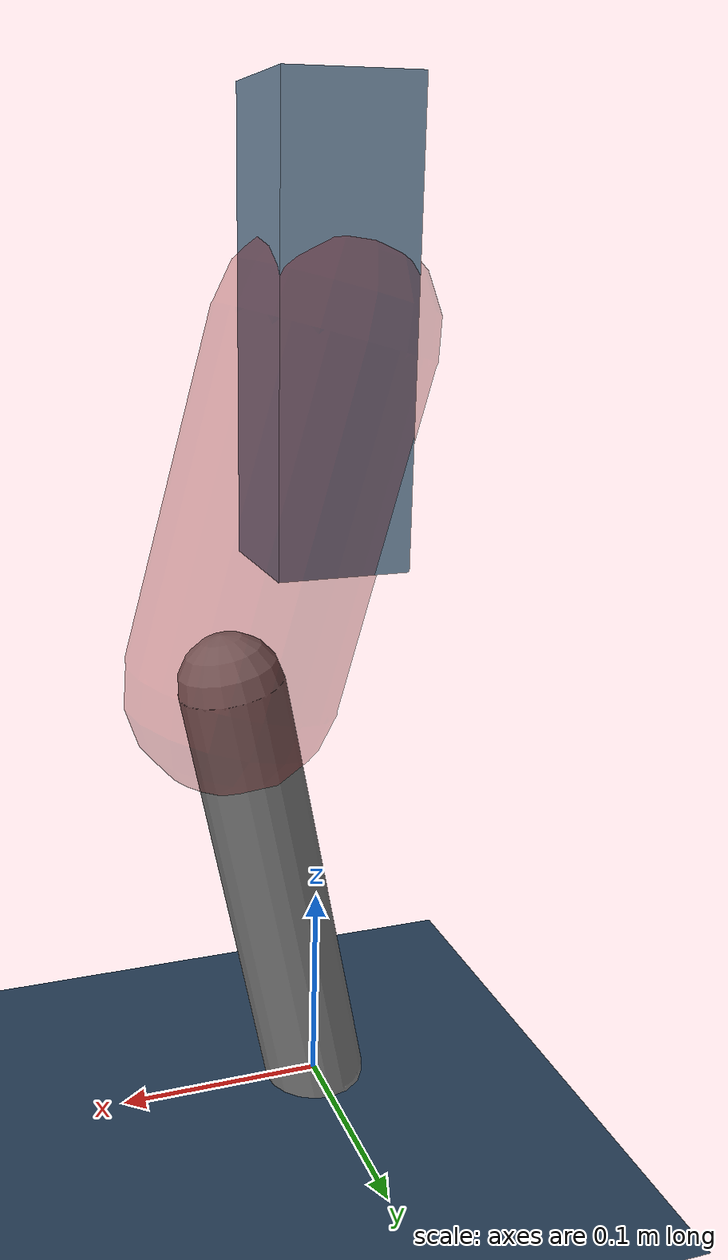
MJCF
<mujoco model="Hopper2D">
	<compiler inertiafromgeom="true" angle="radian" />
	<option timestep="0.001" integrator="implicit" cone="elliptic" solver="Newton" tolerance="1e-10" />

	<default>
		<geom contype="1" conaffinity="1" condim="3" friction="2 0.005 0.0001" solref="0.005 1" />
		<joint limited="true" damping="0.1" />
	</default>

	<asset>
		<texture name="skybox" type="skybox" builtin="gradient" rgb1=".4 .6 .8" rgb2="0 0 0" width="800" height="800" />
		<texture name="grid" type="2d" builtin="checker" rgb1=".1 .2 .3" rgb2=".2 .3 .4" width="300" height="300" mark="edge" markrgb=".2 .3 .4" />
		<material name="ground" texture="grid" texrepeat="1 1" texuniform="true" reflectance="0.1" />
		<material name="leg" rgba="0.5 0.6 0.7 1" />
	</asset>

	<worldbody>

		<geom name="floor" type="plane" size="5 5 0.25" material="ground" />

		<light directional="false" diffuse="0.8 0.8 0.8" specular="0.3 0.3 0.3" pos="0 0 2" dir="0 0 -1" />
		<light mode="targetbodycom" target="base" directional="false" diffuse="0.8 0.8 0.8" specular="0.3 0.3 0.3" pos="0 0 2" dir="0 0 -1" />

		<camera name="fixed" pos="0 -2 1" xyaxes="1 0 0 0 0 1" />
		<camera name="tracking" mode="trackcom" pos="0 -3 1" />

		<body name="root" pos="0 0 0.3698156821919815">
			<joint name="slide_x" type="slide" axis="1 0 0" range="-100 100" />
			<joint name="slide_z" type="slide" axis="0 0 1" range="0 10" />

			<body name="base" pos="0 0 0">
				<geom name="torso" type="box" size="0.03 0.03 0.1" mass="3.25" material="leg" />

				<body name="link1" pos="0 0 0" euler="0 1.3019279807660493 0">
					<joint type="hinge" axis="0 -1 0" pos="0 0 0" name="hinge1" limited="true" range="-3.14 3.14" stiffness="0" damping="0.1" />
					<geom name="thigh" type="capsule" fromto="0 0 0 0.16095703920058027 0 0" size="0.05" rgba="0.5 0 0 0.3" mass="0.6345968940813926" />

					<body name="link2" pos="0.16095703920058027 0 0" euler="0 0.46549519325035915 0">
						<joint type="hinge" axis="0 -1 0" pos="0 0 0" name="hinge2" limited="true" range="-3.14 3.14" stiffness="0" damping="0.1" />
						<geom name="shank" type="capsule" fromto="0 0 0 0.21885864299140126 0 0" size="0.025" mass="0.416686914393121" />

					</body>
				</body>
			</body>
		</body>
	</worldbody>

	<actuator>
		<motor name="torque1" joint="hinge1" ctrlrange="-74.75669032231275 74.75669032231275" ctrllimited="true" gear="1" />
		<motor name="torque2" joint="hinge2" ctrlrange="-112.86427505565398 112.86427505565398" ctrllimited="true" gear="1" />
	</actuator>
</mujoco>
